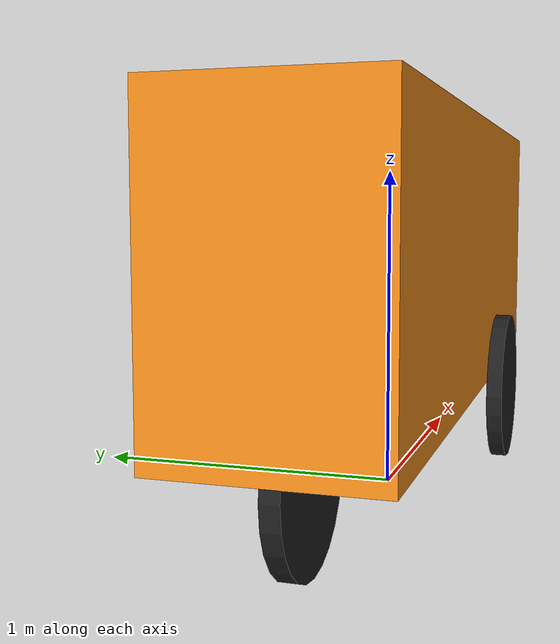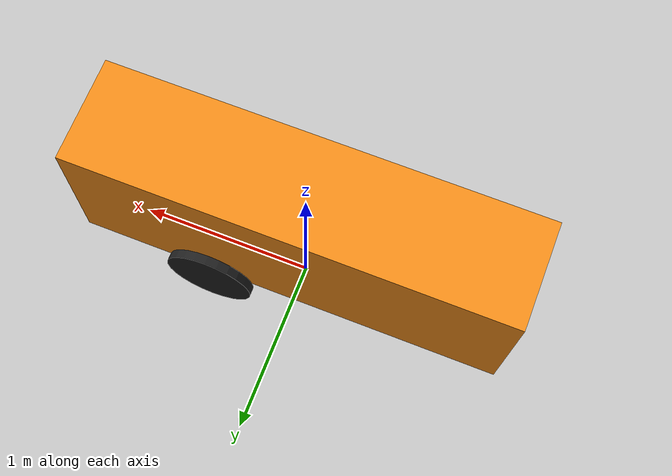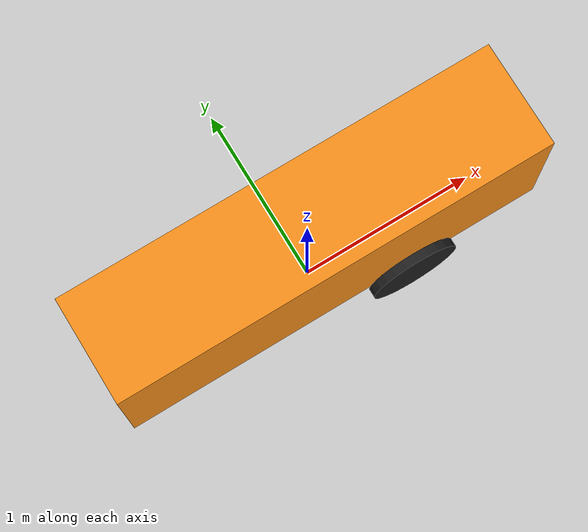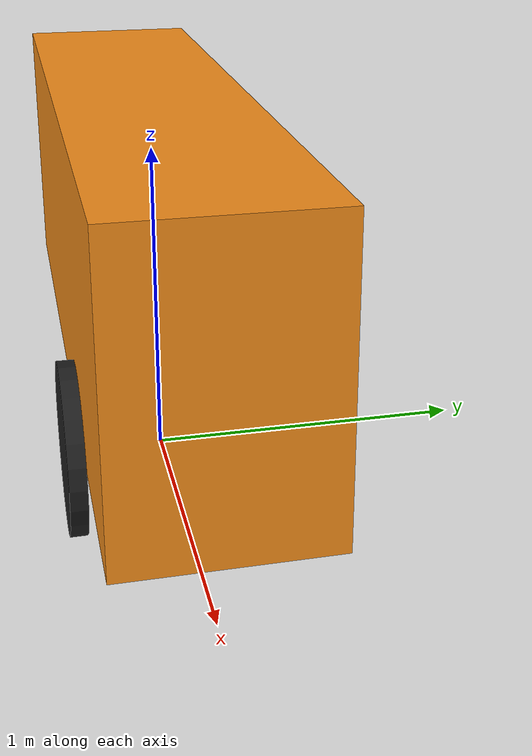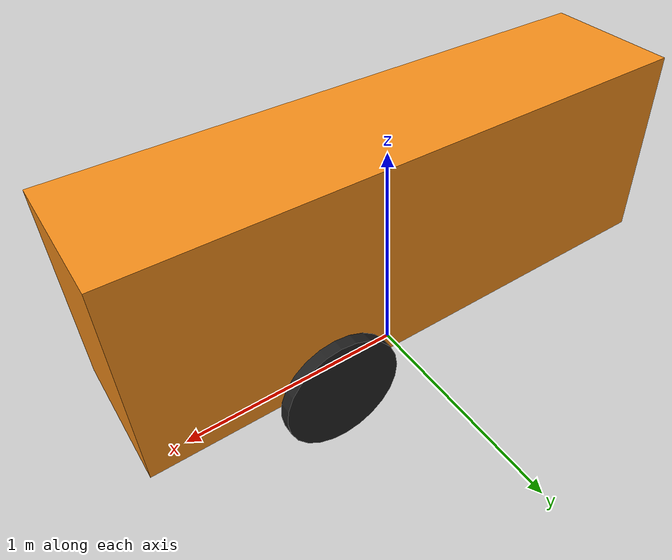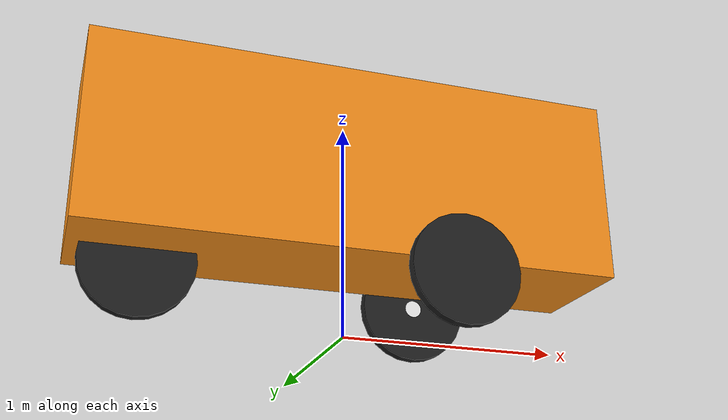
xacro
<?xml version="1.0"?>
<robot name="ackermann_1" xmlns:xacro="http://www.ros.org/wiki/xacro">
  <xacro:property name="wheelRadius" value="0.25" />

  <link name="base_link">
    <visual>
      <geometry>
        <box size="0.01 0.01 0.01"/>
      </geometry>
    </visual>
  </link>

 <joint name="base_joint" type="fixed">
  <parent link="base_link"/>
  <child link="chassis"/>
  <origin xyz="0 0 0.735" rpy="0 0 0"/>
 </joint>

  <link name="chassis">

    <collision>
      <origin xyz="0 0 0" rpy="0 0 0"/>
      <geometry>
        <box size="2.4 0.58 0.86"/>
      </geometry>
    </collision>

    <visual>
      <origin xyz="0 0 0" rpy="0 0 0"/> <geometry>
        <box size="2.4 0.58 0.86"/>
      </geometry>
      <material name="orange"/>
    </visual>

    <inertial>
      <mass value="1"/>
      <origin xyz="0 0 0" rpy="0 0 0"/>
      <inertia ixx="0.4" ixy="0.1" ixz="0.1" iyy="0.4" iyz="0.1" izz="0.2"/>
    </inertial>
  </link>

  <gazebo reference="chassis">
    <kp>1000000.0</kp>
    <kd>0.1</kd>
    <dampingFactor>0</dampingFactor>
    <material>Gazebo/White</material>
    <selfCollide>true</selfCollide>
    <turnGravityOff>false</turnGravityOff>
    <mu1 value="0.1"/>
    <mu2 value="0.1"/>
    <fdir1 value="0 0 0"/>
  </gazebo>

  <link name="right_wheel">

    <collision>
      <origin xyz="0 0 0" rpy="0 1.5708 1.5708" />
      <geometry>
        <cylinder length="0.05" radius="0.25"/>
      </geometry>
    </collision>

    <visual>
      <origin xyz="0 0 0" rpy="0 1.5708 1.5708" />
      <geometry>
        <cylinder length="0.05" radius="0.25"/>
      </geometry>
      <material name="black"/>
    </visual>

    <inertial>
      <origin xyz="0 0 0" rpy="0 1.5708 1.5708" />
      <mass value="0.2"/>
      <cylinder_inertia m="0.2" r="0.3" h="0.1"/>
      <inertia ixx="0.4" ixy="0.1" ixz="0.1" iyy="0.4" iyz="0.1" izz="0.2"/>
    </inertial>

  </link>
  <gazebo reference="right_wheel">
    <mu1 value="2.0"/>
    <mu2 value="2.0"/>
    <kp  value="10000000.0" />
    <kd  value="1.0" />
    <fdir1 value="0 1 0"/>
    <material>Gazebo/Blue</material>
  </gazebo>

  <link name="right_wheel_assembly">
    <collision>
      <origin xyz="0 0 0" rpy="0 1.5708 1.5708" />
      <geometry>
        <cylinder length="0.001" radius="0.04"/>
      </geometry>
    </collision>

    <visual>
      <origin xyz="0 0 0" rpy="0 1.5708 1.5708" />
      <geometry>
        <cylinder length="0.001" radius="0.04"/>
      </geometry>
      <material name="white"/>
    </visual>

    <inertial>
      <origin xyz="0 0 0" rpy="0 1.5708 1.5708" />
      <mass value="0.2"/>
      <cylinder_inertia m="0.2" r="0.3" h="0.1"/>
      <inertia ixx="0.4" ixy="0.1" ixz="0.1" iyy="0.4" iyz="0.1" izz="0.2"/>
    </inertial>
  </link>

  <gazebo reference="right_wheel_assembly">
    <mu1 value="2.0"/>
    <mu2 value="2.0"/>
    <kp  value="10000000.0" />
    <kd  value="1.0" />
    <fdir1 value="0 1 0"/>
    <material>Gazebo/White</material>
  </gazebo>

  <joint name="right_wheel_hinge" type="revolute">
    <parent link="chassis"/>
    <child link="right_wheel_assembly"/>
    <origin xyz="0.45 0.29 -0.48" rpy="0 0 0" /> <axis xyz="0 0 1" rpy="0 0 0" />
    <limit effort="100" velocity="1" lower="-1" upper="1"/>
    <dynamics damping="0.0" friction="0.0"/>
  </joint>

  <joint name="right_wheel_rotate" type="continuous">
    <parent link="right_wheel_assembly"/>
    <child link="right_wheel"/>
    <origin xyz="0.0 0.025 0.0" rpy="0 0 0" />
    <axis xyz="0 1 0" rpy="0 0 0" />
    <limit effort="100" velocity="50"/>
    <dynamics damping="0.0" friction="0.0"/>
  </joint>

  <transmission name="trans_right_wheel_hing">
    <type>transmission_interface/SimpleTransmission</type>
    <joint name="right_wheel_hinge">
      <hardwareInterface>EffortJointInterface</hardwareInterface>
    </joint>
    <actuator name="motor1">
      <hardwareInterface>EffortJointInterface</hardwareInterface>
      <mechanicalReduction>1</mechanicalReduction>
    </actuator>
  </transmission>

  <transmission name="trans_right_wheel_rotate">
    <type>transmission_interface/SimpleTransmission</type>
    <joint name="right_wheel_rotate">
      <hardwareInterface>EffortJointInterface</hardwareInterface>
    </joint>
    <actuator name="motor_right_wheel_rotate">
      <hardwareInterface>EffortJointInterface</hardwareInterface>
      <mechanicalReduction>1</mechanicalReduction>
    </actuator>
  </transmission>

  <link name="left_wheel">

    <collision>
      <origin xyz="0 0 0" rpy="0 1.5708 1.5708" />
      <geometry>
        <cylinder length="0.05" radius="0.25"/>
      </geometry>
    </collision>

    <visual>
      <origin xyz="0 0 0" rpy="0 1.5708 1.5708" />
      <geometry>
        <cylinder length="0.05" radius="0.25"/>
      </geometry>
      <material name="black"/>
    </visual>

    <inertial>
      <origin xyz="0 0 0" rpy="0 1.5708 1.5708" />
      <mass value="0.2"/>
      <cylinder_inertia m="0.2" r="0.3" h="0.1"/>
      <inertia ixx="0.4" ixy="0.1" ixz="0.1" iyy="0.4" iyz="0.1" izz="0.2"/>
    </inertial>

  </link>
  <gazebo reference="left_wheel">
    <mu1 value="2.0"/>
    <mu2 value="2.0"/>
    <kp  value="10000000.0" />
    <kd  value="1.0" />
    <fdir1 value="0 1 0"/>
    <material>Gazebo/Blue</material>
  </gazebo>

  <link name="left_wheel_assembly">
    <collision>
      <origin xyz="0 0 0" rpy="0 1.5708 1.5708" />
      <geometry>
        <cylinder length="0.001" radius="0.04"/>
      </geometry>
    </collision>

    <visual>
      <origin xyz="0 0 0" rpy="0 1.5708 1.5708" />
      <geometry>
        <cylinder length="0.001" radius="0.04"/>
      </geometry>
      <material name="white"/>
    </visual>

    <inertial>
      <origin xyz="0 0 0" rpy="0 1.5708 1.5708" />
      <mass value="0.2"/>
      <cylinder_inertia m="0.2" r="0.3" h="0.1"/>
      <inertia ixx="0.4" ixy="0.1" ixz="0.1" iyy="0.4" iyz="0.1" izz="0.2"/>
    </inertial>
  </link>

  <gazebo reference="left_wheel_assembly">
    <mu1 value="2.0"/>
    <mu2 value="2.0"/>
    <kp  value="10000000.0" />
    <kd  value="1.0" />
    <fdir1 value="0 1 0"/>
    <material>Gazebo/White</material>
  </gazebo>

  <joint name="left_wheel_hinge" type="revolute">
    <parent link="chassis"/>
    <child link="left_wheel_assembly"/>
    <origin xyz="0.45 -0.29 -0.48" rpy="0 0 0" /> <axis xyz="0 0 1" rpy="0 0 0" />
    <limit effort="100" velocity="1" lower="-1" upper="1"/>
    <dynamics damping="0.0" friction="0.0"/>
  </joint>

  <joint name="left_wheel_rotate" type="continuous">
    <parent link="left_wheel_assembly"/>
    <child link="left_wheel"/>
    <origin xyz="0.0 -0.025 0.0" rpy="0 0 0" />
    <axis xyz="0 1 0" rpy="0 0 0" />
    <limit effort="0" velocity="0"/>
    <dynamics damping="0.0" friction="0.0"/>
  </joint>

  <transmission name="tran2">
    <type>transmission_interface/SimpleTransmission</type>
    <joint name="left_wheel_hinge">
      <hardwareInterface>EffortJointInterface</hardwareInterface>
    </joint>
    <actuator name="motor2">
      <hardwareInterface>EffortJointInterface</hardwareInterface>
      <mechanicalReduction>1</mechanicalReduction>
    </actuator>
  </transmission>

  <transmission name="trans_left_wheel_rotate">
    <type>transmission_interface/SimpleTransmission</type>
    <joint name="left_wheel_rotate">
      <hardwareInterface>EffortJointInterface</hardwareInterface>
    </joint>
    <actuator name="motor_left_wheel_rotate">
      <hardwareInterface>EffortJointInterface</hardwareInterface>
      <mechanicalReduction>1</mechanicalReduction>
    </actuator>
  </transmission>

<link name="rear_wheel">
      <collision>
          <origin xyz="0 0 0" rpy="0 1.5708 1.5708" />
          <geometry>
              <cylinder length="0.05" radius="0.25"/>
          </geometry>
      </collision>

      <visual>
          <origin xyz="0 0 0" rpy="0 1.5708 1.5708" />
          <geometry>
                <cylinder length="0.05" radius="0.25"/>
          </geometry>
          <material name="black"/> </visual>

      <inertial>
          <origin xyz="0 0 0" rpy="0 1.5708 1.5708" />
          <mass value="0.2"/>
          <inertia ixx="0.001" ixy="0" ixz="0" iyy="0.001" iyz="0" izz="0.002"/>
      </inertial>
  </link>

  <joint name="rear_wheel_joint" type="continuous">
      <parent link="chassis"/>
      <child link="rear_wheel"/>
      <origin xyz="-0.9 0 -0.48" rpy="0 0 0" />
      <axis xyz="0 1 0" rpy="0 0 0" />
      <limit effort="100" velocity="50"/>
      <dynamics damping="0.0" friction="0.0"/>
  </joint>

  <gazebo reference="rear_wheel">
      <mu1 value="2.0"/>
      <mu2 value="2.0"/>
      <kp value="10000000.0" />
      <kd value="1.0" />
      <fdir1 value="0 1 0"/>
      <material>Gazebo/Blue</material> </gazebo>

  <transmission name="trans_rear_wheel_rotate">
    <type>transmission_interface/SimpleTransmission</type>
    <joint name="rear_wheel_joint">
      <hardwareInterface>EffortJointInterface</hardwareInterface> </joint>
    <actuator name="motor_rear_wheel_rotate">
      <hardwareInterface>EffortJointInterface</hardwareInterface> <mechanicalReduction>1</mechanicalReduction>
    </actuator>
  </transmission>

  <gazebo>
    <plugin name="gazebo_ros_control" filename="libgazebo_ros_control.so">
      <robotNamespace>/ack</robotNamespace>
        <legacyModeNS>true</legacyModeNS>
    </plugin>
  </gazebo>

</robot>
